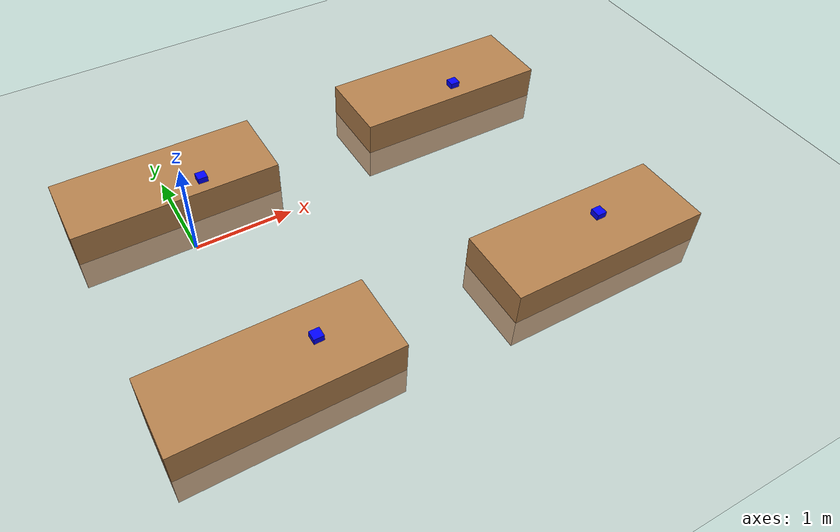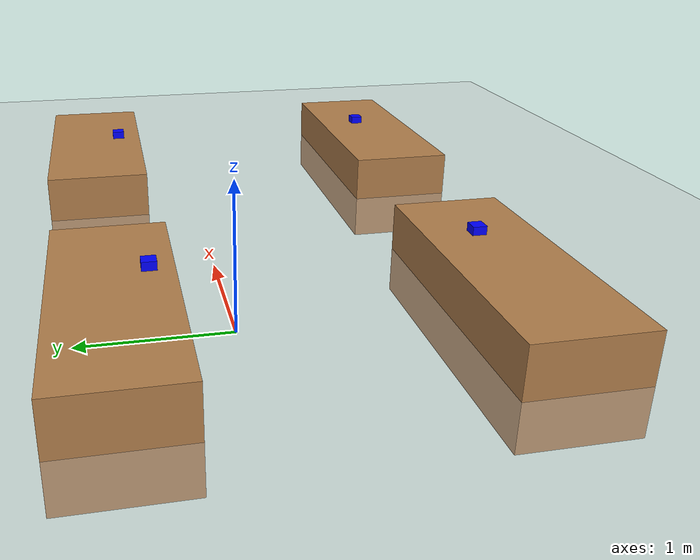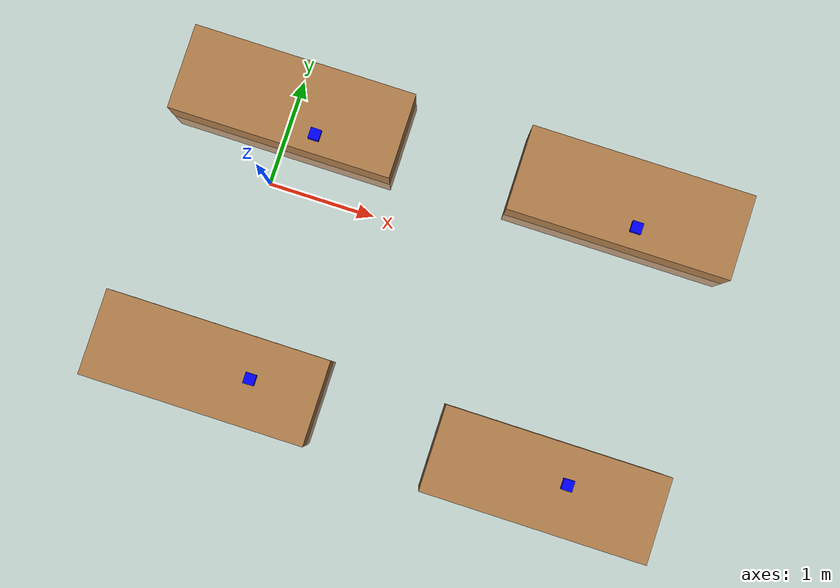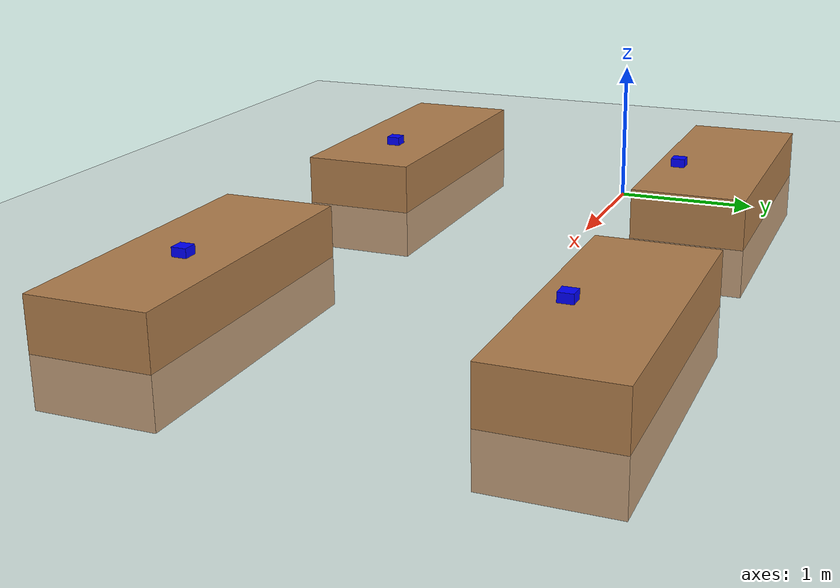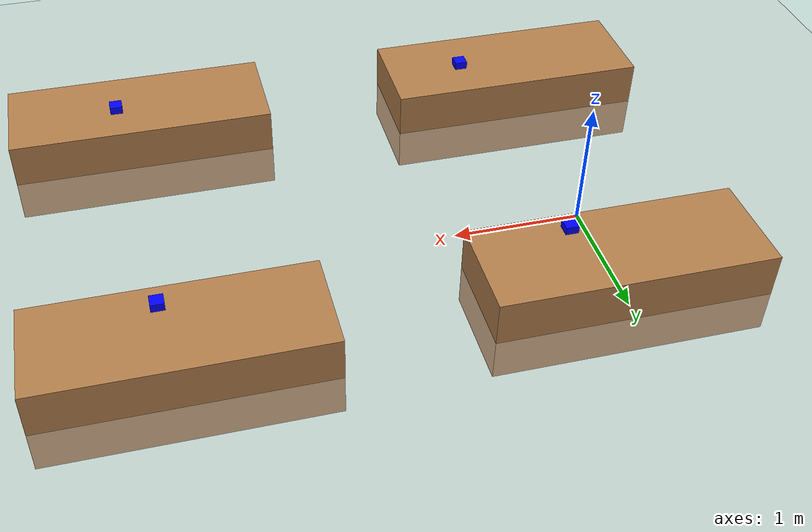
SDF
<sdf version="1.7">
 <world name="default">
  <light name="sun" type="directional">
   <pose>0 0 10 0 -0 0</pose>
   <diffuse>0.8 0.8 0.8 1</diffuse>
   <specular>0.2 0.2 0.2 1</specular>
   <attenuation>
    <range>1000</range>
    <constant>0.9</constant>
    <linear>0.01</linear>
    <quadratic>0.001</quadratic>
   </attenuation>
   <direction>-0.5 0.1 -0.9</direction>
   <spot><inner_angle>0</inner_angle><outer_angle>0</outer_angle><falloff>0</falloff></spot>
  </light>
  <model name="ground_plane">
   <static>1</static>
   <link name="link">
    <collision name="collision">
     <geometry><plane><normal>0 0 1</normal><size>100 100</size></plane></geometry>
     <surface>
      <contact><collide_bitmask>65535</collide_bitmask></contact>
      <friction><ode><mu>100</mu><mu2>50</mu2></ode></friction>
     </surface>
    </collision>
    <visual name="visual">
     <cast_shadows>0</cast_shadows>
     <geometry><plane><normal>0 0 1</normal><size>100 100</size></plane></geometry>
     <material>
      <script><uri>file://media/materials/scripts/gazebo.material</uri><name>Gazebo/Grey</name></script>
     </material>
    </visual>
   </link>
  </model>
  <gravity>0 0 -9.8</gravity>
  <magnetic_field>6e-06 2.3e-05 -4.2e-05</magnetic_field>
  <atmosphere type="adiabatic"/>
  <physics name="default_physics" default="0" type="ode">
   <max_step_size>0.001</max_step_size>
   <real_time_factor>1</real_time_factor>
   <real_time_update_rate>1000</real_time_update_rate>
  </physics>
  <scene><ambient>0.4 0.4 0.4 1</ambient><background>0.7 0.7 0.7 1</background><shadows>1</shadows></scene>
  <audio><device>default</device></audio>
  <spherical_coordinates>
   <surface_model>EARTH_WGS84</surface_model>
   <latitude_deg>0</latitude_deg>
   <longitude_deg>0</longitude_deg>
   <elevation>0</elevation>
   <heading_deg>0</heading_deg>
  </spherical_coordinates>
  <model name="table">
   <static>1</static>
   <link name="link">
    <collision name="surface">
     <pose>0 0.075 0 0 -0 0</pose>
     <geometry><box><size>2.1 0.8 0.7</size></box></geometry>
     <surface><friction><ode><mu>0.6</mu><mu2>0.6</mu2></ode></friction></surface>
    </collision>
    <visual name="visual1">
     <pose>0 0.075 0 0 -0 0</pose>
     <geometry><box><size>2.1 0.8 0.7</size></box></geometry>
     <material>
      <script><uri>file://media/materials/scripts/gazebo.material</uri><name>Gazebo/Wood</name></script>
     </material>
    </visual>
   </link>
   <pose>1.8e-05 0.659275 0 0 -0 0</pose>
  </model>
  <model name="unit_box_blue">
   <link name="link">
    <inertial>
     <mass>0.05</mass>
     <inertia>
      <ixx>5.763e-05</ixx>
      <ixy>0</ixy>
      <ixz>0</ixz>
      <iyy>6.331e-05</iyy>
      <iyz>0</iyz>
      <izz>6.119e-05</izz>
     </inertia>
    </inertial>
    <visual name="visual">
     <geometry><box><size>0.1 0.1 0.0625</size></box></geometry>
     <material>
      <script><name>Gazebo/Grey</name><uri>file://media/materials/scripts/gazebo.material</uri></script>
      <ambient>0 0 1 1</ambient>
      <shader type="vertex"><normal_map>__default__</normal_map></shader>
      <diffuse>0.7 0.7 0.7 1</diffuse>
      <specular>0.01 0.01 0.01 1</specular>
      <emissive>0 0 0 1</emissive>
     </material>
    </visual>
    <collision name="collision">
     <geometry><box><size>0.1 0.1 0.0625</size></box></geometry>
     <surface>
      <friction>
       <ode><mu>5</mu><mu2>5</mu2><fdir1>0 0 0</fdir1><slip1>0</slip1><slip2>0</slip2></ode>
       <torsional>
        <coefficient>1</coefficient>
        <patch_radius>0</patch_radius>
        <surface_radius>0</surface_radius>
        <use_patch_radius>1</use_patch_radius>
        <ode><slip>0</slip></ode>
       </torsional>
      </friction>
      <bounce><restitution_coefficient>0</restitution_coefficient><threshold>1e+06</threshold></bounce>
      <contact>
       <collide_without_contact>0</collide_without_contact>
       <collide_without_contact_bitmask>1</collide_without_contact_bitmask>
       <collide_bitmask>1</collide_bitmask>
       <ode>
        <soft_cfm>0</soft_cfm>
        <soft_erp>0.2</soft_erp>
        <kp>1e+13</kp>
        <kd>1</kd>
        <max_vel>0.01</max_vel>
        <min_depth>0</min_depth>
       </ode>
       <bullet>
        <split_impulse>1</split_impulse>
        <split_impulse_penetration_threshold>-0.01</split_impulse_penetration_threshold>
        <soft_cfm>0</soft_cfm>
        <soft_erp>0.2</soft_erp>
        <kp>1e+13</kp>
        <kd>1</kd>
       </bullet>
      </contact>
     </surface>
    </collision>
   </link>
   <static>0</static>
   <pose>0.3 0.5 0.38125 0 -0 1e-06</pose>
  </model>
  <model name="table_clone">
   <static>1</static>
   <link name="link">
    <collision name="surface">
     <pose>0 0.075 0 0 -0 0</pose>
     <geometry><box><size>2.1 0.8 0.7</size></box></geometry>
     <surface><friction><ode><mu>0.6</mu><mu2>0.6</mu2></ode></friction></surface>
    </collision>
    <visual name="visual1">
     <pose>0 0.075 0 0 -0 0</pose>
     <geometry><box><size>2.1 0.8 0.7</size></box></geometry>
     <material>
      <script><uri>file://media/materials/scripts/gazebo.material</uri><name>Gazebo/Wood</name></script>
     </material>
    </visual>
   </link>
   <pose>3.18521 0.717754 0 0 -0 0</pose>
  </model>
  <model name="unit_box_blue_clone">
   <link name="link">
    <inertial>
     <mass>0.05</mass>
     <inertia>
      <ixx>5.763e-05</ixx>
      <ixy>0</ixy>
      <ixz>0</ixz>
      <iyy>6.331e-05</iyy>
      <iyz>0</iyz>
      <izz>6.119e-05</izz>
     </inertia>
    </inertial>
    <visual name="visual">
     <geometry><box><size>0.1 0.1 0.0625</size></box></geometry>
     <material>
      <script><name>Gazebo/Grey</name><uri>file://media/materials/scripts/gazebo.material</uri></script>
      <ambient>0 0 1 1</ambient>
      <shader type="vertex"><normal_map>__default__</normal_map></shader>
      <diffuse>0.7 0.7 0.7 1</diffuse>
      <specular>0.01 0.01 0.01 1</specular>
      <emissive>0 0 0 1</emissive>
     </material>
    </visual>
    <collision name="collision">
     <geometry><box><size>0.1 0.1 0.0625</size></box></geometry>
     <surface>
      <friction>
       <ode><mu>5</mu><mu2>5</mu2><fdir1>0 0 0</fdir1><slip1>0</slip1><slip2>0</slip2></ode>
       <torsional>
        <coefficient>1</coefficient>
        <patch_radius>0</patch_radius>
        <surface_radius>0</surface_radius>
        <use_patch_radius>1</use_patch_radius>
        <ode><slip>0</slip></ode>
       </torsional>
      </friction>
      <bounce><restitution_coefficient>0</restitution_coefficient><threshold>1e+06</threshold></bounce>
      <contact>
       <collide_without_contact>0</collide_without_contact>
       <collide_without_contact_bitmask>1</collide_without_contact_bitmask>
       <collide_bitmask>1</collide_bitmask>
       <ode>
        <soft_cfm>0</soft_cfm>
        <soft_erp>0.2</soft_erp>
        <kp>1e+13</kp>
        <kd>1</kd>
        <max_vel>0.01</max_vel>
        <min_depth>0</min_depth>
       </ode>
       <bullet>
        <split_impulse>1</split_impulse>
        <split_impulse_penetration_threshold>-0.01</split_impulse_penetration_threshold>
        <soft_cfm>0</soft_cfm>
        <soft_erp>0.2</soft_erp>
        <kp>1e+13</kp>
        <kd>1</kd>
       </bullet>
      </contact>
     </surface>
    </collision>
   </link>
   <static>0</static>
   <pose>3.29261 0.58342 0.38125 0 -0 1e-06</pose>
  </model>
  <model name="table_clone_clone">
   <static>1</static>
   <link name="link">
    <collision name="surface">
     <pose>0 0.075 0 0 -0 0</pose>
     <geometry><box><size>2.1 0.8 0.7</size></box></geometry>
     <surface><friction><ode><mu>0.6</mu><mu2>0.6</mu2></ode></friction></surface>
    </collision>
    <visual name="visual1">
     <pose>0 0.075 0 0 -0 0</pose>
     <geometry><box><size>2.1 0.8 0.7</size></box></geometry>
     <material>
      <script><uri>file://media/materials/scripts/gazebo.material</uri><name>Gazebo/Wood</name></script>
     </material>
    </visual>
   </link>
   <pose>3.20756 -1.90712 0 0 -0 0</pose>
  </model>
  <model name="table_clone_0">
   <static>1</static>
   <link name="link">
    <collision name="surface">
     <pose>0 0.075 0 0 -0 0</pose>
     <geometry><box><size>2.1 0.8 0.7</size></box></geometry>
     <surface><friction><ode><mu>0.6</mu><mu2>0.6</mu2></ode></friction></surface>
    </collision>
    <visual name="visual1">
     <pose>0 0.075 0 0 -0 0</pose>
     <geometry><box><size>2.1 0.8 0.7</size></box></geometry>
     <material>
      <script><uri>file://media/materials/scripts/gazebo.material</uri><name>Gazebo/Wood</name></script>
     </material>
    </visual>
   </link>
   <pose>0.013705 -1.85505 0 0 -0 0</pose>
  </model>
  <model name="unit_box_blue_clone_0">
   <link name="link">
    <inertial>
     <mass>0.05</mass>
     <inertia>
      <ixx>5.763e-05</ixx>
      <ixy>0</ixy>
      <ixz>0</ixz>
      <iyy>6.331e-05</iyy>
      <iyz>0</iyz>
      <izz>6.119e-05</izz>
     </inertia>
    </inertial>
    <visual name="visual">
     <geometry><box><size>0.1 0.1 0.0625</size></box></geometry>
     <material>
      <script><name>Gazebo/Grey</name><uri>file://media/materials/scripts/gazebo.material</uri></script>
      <ambient>0 0 1 1</ambient>
      <shader type="vertex"><normal_map>__default__</normal_map></shader>
      <diffuse>0.7 0.7 0.7 1</diffuse>
      <specular>0.01 0.01 0.01 1</specular>
      <emissive>0 0 0 1</emissive>
     </material>
    </visual>
    <collision name="collision">
     <geometry><box><size>0.1 0.1 0.0625</size></box></geometry>
     <surface>
      <friction>
       <ode><mu>5</mu><mu2>5</mu2><fdir1>0 0 0</fdir1><slip1>0</slip1><slip2>0</slip2></ode>
       <torsional>
        <coefficient>1</coefficient>
        <patch_radius>0</patch_radius>
        <surface_radius>0</surface_radius>
        <use_patch_radius>1</use_patch_radius>
        <ode><slip>0</slip></ode>
       </torsional>
      </friction>
      <bounce><restitution_coefficient>0</restitution_coefficient><threshold>1e+06</threshold></bounce>
      <contact>
       <collide_without_contact>0</collide_without_contact>
       <collide_without_contact_bitmask>1</collide_without_contact_bitmask>
       <collide_bitmask>1</collide_bitmask>
       <ode>
        <soft_cfm>0</soft_cfm>
        <soft_erp>0.2</soft_erp>
        <kp>1e+13</kp>
        <kd>1</kd>
        <max_vel>0.01</max_vel>
        <min_depth>0</min_depth>
       </ode>
       <bullet>
        <split_impulse>1</split_impulse>
        <split_impulse_penetration_threshold>-0.01</split_impulse_penetration_threshold>
        <soft_cfm>0</soft_cfm>
        <soft_erp>0.2</soft_erp>
        <kp>1e+13</kp>
        <kd>1</kd>
       </bullet>
      </contact>
     </surface>
    </collision>
   </link>
   <static>0</static>
   <pose>0.437495 -1.75176 0.38125 0 -0 1e-06</pose>
  </model>
  <model name="unit_box_blue_clone_1">
   <link name="link">
    <inertial>
     <mass>0.05</mass>
     <inertia>
      <ixx>5.763e-05</ixx>
      <ixy>0</ixy>
      <ixz>0</ixz>
      <iyy>6.331e-05</iyy>
      <iyz>0</iyz>
      <izz>6.119e-05</izz>
     </inertia>
    </inertial>
    <visual name="visual">
     <geometry><box><size>0.1 0.1 0.0625</size></box></geometry>
     <material>
      <script><name>Gazebo/Grey</name><uri>file://media/materials/scripts/gazebo.material</uri></script>
      <ambient>0 0 1 1</ambient>
      <shader type="vertex"><normal_map>__default__</normal_map></shader>
      <diffuse>0.7 0.7 0.7 1</diffuse>
      <specular>0.01 0.01 0.01 1</specular>
      <emissive>0 0 0 1</emissive>
     </material>
    </visual>
    <collision name="collision">
     <geometry><box><size>0.1 0.1 0.0625</size></box></geometry>
     <surface>
      <friction>
       <ode><mu>5</mu><mu2>5</mu2><fdir1>0 0 0</fdir1><slip1>0</slip1><slip2>0</slip2></ode>
       <torsional>
        <coefficient>1</coefficient>
        <patch_radius>0</patch_radius>
        <surface_radius>0</surface_radius>
        <use_patch_radius>1</use_patch_radius>
        <ode><slip>0</slip></ode>
       </torsional>
      </friction>
      <bounce><restitution_coefficient>0</restitution_coefficient><threshold>1e+06</threshold></bounce>
      <contact>
       <collide_without_contact>0</collide_without_contact>
       <collide_without_contact_bitmask>1</collide_without_contact_bitmask>
       <collide_bitmask>1</collide_bitmask>
       <ode>
        <soft_cfm>0</soft_cfm>
        <soft_erp>0.2</soft_erp>
        <kp>1e+13</kp>
        <kd>1</kd>
        <max_vel>0.01</max_vel>
        <min_depth>0</min_depth>
       </ode>
       <bullet>
        <split_impulse>1</split_impulse>
        <split_impulse_penetration_threshold>-0.01</split_impulse_penetration_threshold>
        <soft_cfm>0</soft_cfm>
        <soft_erp>0.2</soft_erp>
        <kp>1e+13</kp>
        <kd>1</kd>
       </bullet>
      </contact>
     </surface>
    </collision>
   </link>
   <static>0</static>
   <pose>3.38684 -1.77494 0.38125 0 -0 1e-06</pose>
  </model>
 </world>
</sdf>
